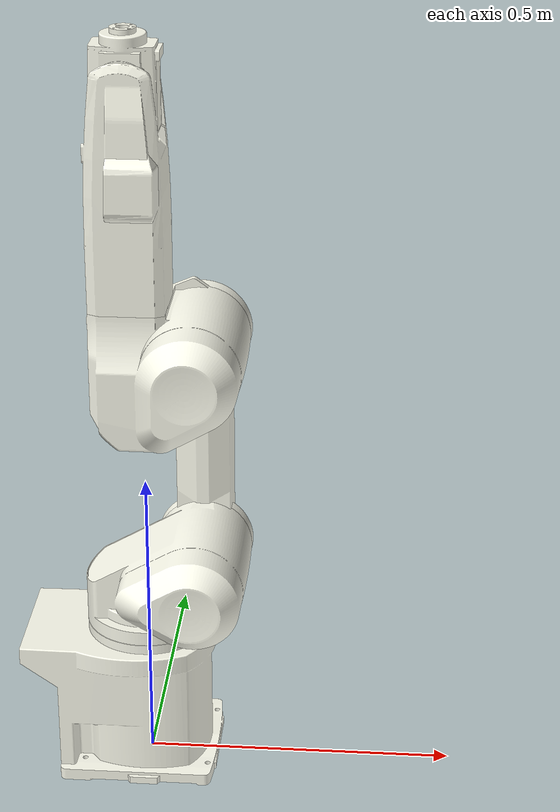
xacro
<?xml version="1.0"?>
<robot xmlns:xacro="http://www.ros.org/wiki/xacro" name="rv_6sdl_s15">
    <xacro:arg name="initial_positions_file" default="initial_positions.yaml" />

    <!-- Import rv_6sdl_s15 urdf file -->
    <xacro:include filename="$(find mitsubishi_robot_description)/urdf/rv_6sdl_s15/rv_6sdl_s15.xacro" />

    <!-- Import control_xacro -->
    <xacro:include filename="rv_6sdl_s15.ros2_control.xacro" />

    <xacro:rv_6sdl_s15_ros2_control name="FakeSystem" initial_positions_file="$(arg initial_positions_file)"/>

</robot>

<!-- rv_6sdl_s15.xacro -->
<robot name="rv_6sdl_s15" xmlns:xacro="http://ros.org/wiki/xacro">
  <!-- Arguments -->
  <xacro:arg name="control_name" default="MitsubishiRobot/RobotSystem" />
  <xacro:arg name="initial_positions_file" default="$(find mitsubishi_robot_description)/urdf/rv_6sdl_s15/initial_positions.yaml" />
  <xacro:arg name="robot_ip" default="192.168.0.1" />
  <xacro:arg name="robot_port" default="10000" />
  <xacro:arg name="control_port" default="10003" />
  <xacro:arg name="robot_password" default="ARMALABS" />
  <xacro:arg name="simulation" default="true" />

  <!-- Includes -->
  <xacro:include filename="rv_6sdl_s15.urdf.xacro" />
  <xacro:include filename="rv_6sdl_s15.ros2_control.xacro" />

  <!--   control_name="$(arg control_name)" -->
  <!--   initial_positions_file="$(arg initial_positions_file)" -->
  <!--   robot_ip="$(arg robot_ip)" -->
  <!--   robot_port="$(arg robot_port)" -->
  <!--   control_port="$(arg control_port)" -->
  <!--   robot_password="$(arg robot_password)" -->
  <!--   simulation="$(arg simulation)" -->
</robot>

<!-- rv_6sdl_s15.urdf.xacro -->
<xacro:macro name="rv_6sdl_s15_urdf" xmlns:xacro="http://ros.org/wiki/xacro">
  <!-- Constants -->
  <xacro:property name="PI" value="3.1415926535897931" />
  <xacro:property name="mass" value="0.1" />
  <xacro:property name="offset_from_limit" value="5.0" />
  <xacro:property name="joint_velocity" value="5.0" />
  <xacro:property name="damping" value="10.0" />

  <!-- Link Definitions -->
  <link name="world" />
  <link name="base_link">
    <visual>
      <geometry>
        <mesh filename="package://mitsubishi_robot_description/meshes/rv_6sdl_s15/visual/base_link.stl"
          scale="0.001 0.001 0.001" />
      </geometry>
      <origin rpy="${PI/2} 0 ${PI/2}" />
      <material name="ivory">
        <color rgba="1.0 1.0 ${240/255} 1.0" />
      </material>
    </visual>
    <collision>
      <geometry>
        <mesh
          filename="package://mitsubishi_robot_description/meshes/rv_6sdl_s15/collision/base_link.stl"
          scale="0.001 0.001 0.001" />
      </geometry>
      <origin rpy="${PI/2} 0 ${PI/2}" />
    </collision>
    <inertial>
      <mass value="${mass}" />
      <inertia
        ixx="1.0" ixy="0.0" ixz="0.0"
        iyy="1.0" iyz="0.0"
        izz="1.0" />
    </inertial>
  </link>

  <joint name="base_joint" type="fixed">
    <parent link="world" />
    <child link="base_link" />
    <origin xyz="0 0 0" rpy="0 0 0" />
    <axis xyz="0 0 1" />
  </joint>

  <link name="link_1">
    <visual>
      <geometry>
        <mesh
          filename="package://mitsubishi_robot_description/meshes/rv_6sdl_s15/visual/link_1.stl"
          scale="0.001 0.001 0.001" />
      </geometry>
      <origin xyz="0 0 0.038" rpy="${PI/2} 0 ${PI/2}" />
      <material name="ivory">
        <color rgba="1.0 1.0 ${240/255} 1.0" />
      </material>
    </visual>
    <collision>
      <geometry>
        <mesh
          filename="package://mitsubishi_robot_description/meshes/rv_6sdl_s15/collision/link_1.stl"
          scale="0.001 0.001 0.001" />
      </geometry>
      <origin xyz="0 0 0.038" rpy="${PI/2} 0 ${PI/2}" />
    </collision>
    <inertial>
      <mass value="${mass}" />
      <inertia
        ixx="1.0" ixy="0.0" ixz="0.0"
        iyy="1.0" iyz="0.0"
        izz="1.0" />
    </inertial>
  </link>

  <joint name="j1" type="revolute">
    <axis xyz="0 0 1" />
    <limit effort="1000.0" lower="${(-170+offset_from_limit)*PI/180}"
      upper="${(170-offset_from_limit)*PI/180}" velocity="${joint_velocity}" />
    <parent link="base_link" />
    <child link="link_1" />
    <origin xyz="0 0 0.239" />
    <dynamics damping="${damping}" friction="0.1" />
  </joint>

  <link name="link_2">
    <visual>
      <geometry>
        <mesh
          filename="package://mitsubishi_robot_description/meshes/rv_6sdl_s15/visual/link_2.stl"
          scale="0.001 0.001 0.001" />
      </geometry>
      <origin xyz="0 0 0.1" rpy="0 ${-PI/2} 0" />
      <material name="ivory">
        <color rgba="1.0 1.0 ${240/255} 1.0" />
      </material>
    </visual>
    <collision>
      <geometry>
        <mesh
          filename="package://mitsubishi_robot_description/meshes/rv_6sdl_s15/collision/link_2.stl"
          scale="0.001 0.001 0.001" />
      </geometry>
      <origin xyz="0 0 0.1" rpy="0 ${-PI/2} 0" />
    </collision>
    <inertial>
      <mass value="${mass}" />
      <inertia
        ixx="1.0" ixy="0.0" ixz="0.0"
        iyy="1.0" iyz="0.0"
        izz="1.0" />
    </inertial>
  </link>

  <joint name="j2" type="revolute">
    <axis xyz="0 0 1" />
    <limit effort="1000.0" lower="${-92*PI/180}" upper="${(135-offset_from_limit)*PI/180}"
      velocity="${joint_velocity}" />
    <parent link="link_1" />
    <child link="link_2" />
    <origin xyz="0.085 0 0.111" rpy="${PI/2} 0 ${PI}" />
    <dynamics damping="${damping}" friction="0.1" />
  </joint>

  <link name="link_3">
    <visual>
      <geometry>
        <mesh
          filename="package://mitsubishi_robot_description/meshes/rv_6sdl_s15/visual/link_3.stl"
          scale="0.001 0.001 0.001" />
      </geometry>
      <origin xyz="0 0 0.1" rpy="0 ${-PI/2} ${PI}" />
      <material name="ivory">
        <color rgba="1.0 1.0 ${240/255} 1.0" />
      </material>
    </visual>
    <collision>
      <geometry>
        <mesh
          filename="package://mitsubishi_robot_description/meshes/rv_6sdl_s15/collision/link_3.stl"
          scale="0.001 0.001 0.001" />
      </geometry>
      <origin xyz="0 0 0.1" rpy="0 ${-PI/2} ${PI}" />
    </collision>
    <inertial>
      <mass value="${mass}" />
      <inertia
        ixx="1.0" ixy="0.0" ixz="0.0"
        iyy="1.0" iyz="0.0"
        izz="1.0" />
    </inertial>
  </link>

  <joint name="j3" type="revolute">
    <axis xyz="0 0 1" />
    <limit effort="1000.0" lower="${(-129+offset_from_limit)*PI/180}"
      upper="${(166-offset_from_limit)*PI/180}" velocity="${joint_velocity}" />
    <parent link="link_2" />
    <child link="link_3" />
    <origin xyz="0 0.380 0" rpy="0 0 ${PI/2}" />
    <dynamics damping="${damping}" friction="0.1" />
  </joint>

  <link name="link_4">
    <visual>
      <geometry>
        <mesh
          filename="package://mitsubishi_robot_description/meshes/rv_6sdl_s15/visual/link_4.stl"
          scale="0.001 0.001 0.001" />
      </geometry>
      <material name="ivory">
        <color rgba="1.0 1.0 ${240/255} 1.0" />
      </material>
      <origin xyz="0 0.0 0.08" rpy="0 0 0" />
    </visual>
    <collision>
      <geometry>
        <mesh
          filename="package://mitsubishi_robot_description/meshes/rv_6sdl_s15/collision/link_4.stl"
          scale="0.001 0.001 0.001" />
      </geometry>
      <origin xyz="0 0.0 0.08" rpy="0 0 0" />
    </collision>
    <inertial>
      <mass value="${mass}" />
      <inertia
        ixx="1.0" ixy="0.0" ixz="0.0"
        iyy="1.0" iyz="0.0"
        izz="1.0" />
    </inertial>
  </link>

  <joint name="j4" type="revolute">
    <axis xyz="0 0 1" />
    <limit effort="1000.0" lower="${(-160+offset_from_limit)*PI/180}"
      upper="${(160-offset_from_limit)*PI/180}" velocity="${joint_velocity}" />
    <parent link="link_3" />
    <child link="link_4" />
    <origin xyz="0.0 -0.1 0" rpy="0 ${PI/2} 0" />
    <dynamics damping="${damping}" friction="0.1" />
  </joint>

  <link name="link_5">
    <visual>
      <geometry>
        <mesh
          filename="package://mitsubishi_robot_description/meshes/rv_6sdl_s15/visual/link_5.stl"
          scale="0.001 0.001 0.001" />
      </geometry>
      <origin xyz="0 0.0 -0.047" rpy="0 ${PI/2} ${-PI/2}" />
      <material name="ivory">
        <color rgba="1.0 1.0 ${240/255} 1.0" />
      </material>
    </visual>
    <collision>
      <geometry>
        <mesh
          filename="package://mitsubishi_robot_description/meshes/rv_6sdl_s15/collision/link_5.stl"
          scale="0.001 0.001 0.001" />
      </geometry>
      <origin xyz="0 0.0 -0.047" rpy="0 ${PI/2} ${-PI/2}" />
    </collision>
    <inertial>
      <mass value="${mass}" />
      <inertia
        ixx="1.0" ixy="0.0" ixz="0.0"
        iyy="1.0" iyz="0.0"
        izz="1.0" />
    </inertial>
  </link>

  <joint name="j5" type="revolute">
    <axis xyz="0 0 1" />
    <limit effort="1000.0" lower="${(-110+offset_from_limit)*PI/180}"
      upper="${(110-offset_from_limit)*PI/180}" velocity="${joint_velocity}" />
    <parent link="link_4" />
    <child link="link_5" />
    <origin xyz="0 0 0.425" rpy="0.0 ${-PI/2} 0" />
    <dynamics damping="${damping}" friction="0.1" />
  </joint>

  <link name="end_effector">
    <inertial>
      <mass value="${mass}" />
      <inertia
        ixx="1.0" ixy="0.0" ixz="0.0"
        iyy="1.0" iyz="0.0"
        izz="1.0" />
    </inertial>
  </link>

  <joint name="j6" type="revolute">
    <axis xyz="0 0 1" />
    <limit effort="1000.0" lower="${(-360+offset_from_limit)*PI/180}"
      upper="${(360-offset_from_limit)*PI/180}" velocity="${joint_velocity}" />
    <parent link="link_5" />
    <child link="end_effector" />
    <origin xyz="0.085 0 0" rpy="0 ${PI/2} 0" />
    <dynamics damping="${damping}" friction="0.1" />
  </joint>
</xacro:macro>
